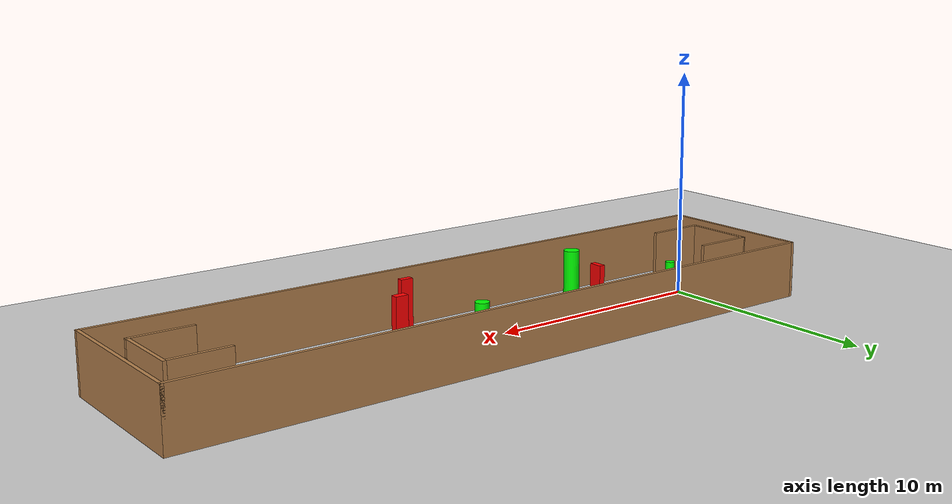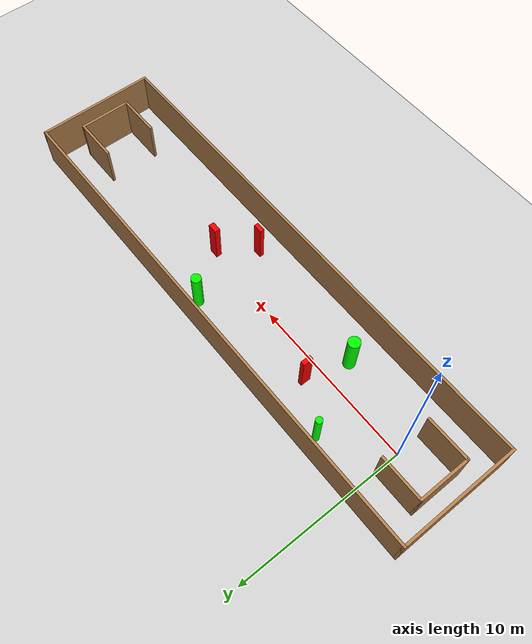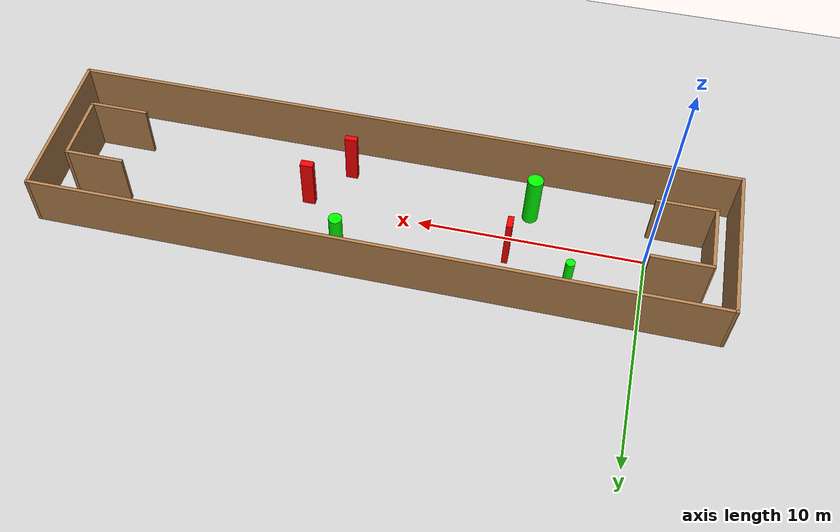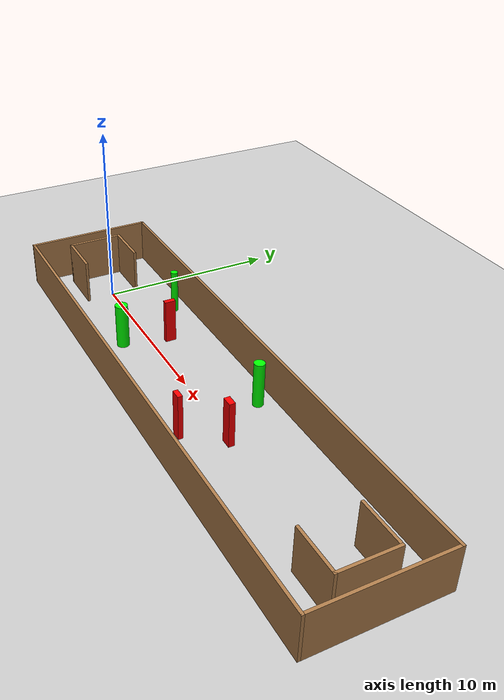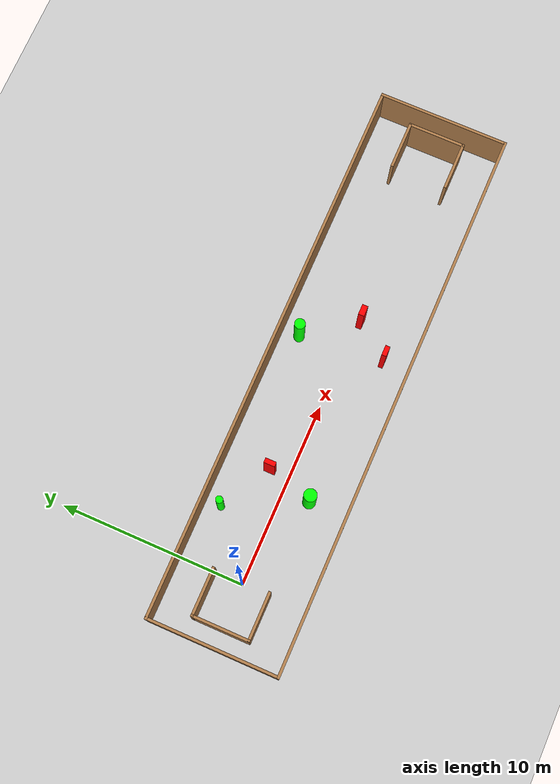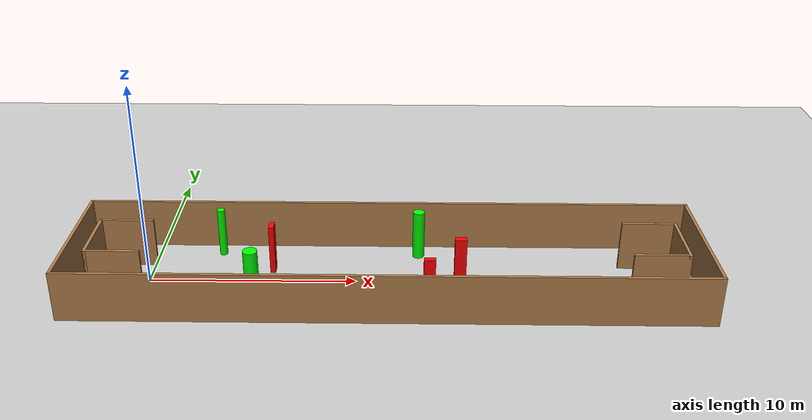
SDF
<sdf version="1.7">
 <world name="default">
  <light name="sun" type="directional">
   <pose>0 0 10 0 -0 0</pose>
   <diffuse>0.8 0.8 0.8 1</diffuse>
   <specular>0.2 0.2 0.2 1</specular>
   <attenuation>
    <range>1000</range>
    <constant>0.9</constant>
    <linear>0.01</linear>
    <quadratic>0.001</quadratic>
   </attenuation>
   <direction>-0.5 0.1 -0.9</direction>
   <spot><inner_angle>0</inner_angle><outer_angle>0</outer_angle><falloff>0</falloff></spot>
  </light>
  <model name="ground_plane">
   <static>1</static>
   <link name="link">
    <collision name="collision">
     <geometry><plane><normal>0 0 1</normal><size>100 100</size></plane></geometry>
     <surface>
      <contact><collide_bitmask>65535</collide_bitmask></contact>
      <friction><ode><mu>100</mu><mu2>50</mu2></ode></friction>
     </surface>
    </collision>
    <visual name="visual">
     <cast_shadows>0</cast_shadows>
     <geometry><plane><normal>0 0 1</normal><size>100 100</size></plane></geometry>
     <material>
      <script><uri>file://media/materials/scripts/gazebo.material</uri><name>Gazebo/Grey</name></script>
     </material>
    </visual>
   </link>
  </model>
  <gravity>0 0 -9.8</gravity>
  <magnetic_field>6e-06 2.3e-05 -4.2e-05</magnetic_field>
  <atmosphere type="adiabatic"/>
  <physics type="ode">
   <max_step_size>0.001</max_step_size>
   <real_time_factor>1</real_time_factor>
   <real_time_update_rate>1000</real_time_update_rate>
  </physics>
  <scene><ambient>0.4 0.4 0.4 1</ambient><background>0.7 0.7 0.7 1</background><shadows>1</shadows></scene>
  <spherical_coordinates>
   <surface_model>EARTH_WGS84</surface_model>
   <latitude_deg>0</latitude_deg>
   <longitude_deg>0</longitude_deg>
   <elevation>0</elevation>
   <heading_deg>0</heading_deg>
  </spherical_coordinates>
  <model name="my_base_walls">
   <link name="Wall_0">
    <collision name="Wall_0_Collision">
     <geometry><box><size>7.15 0.15 2.5</size></box></geometry>
     <pose>0 0 1.25 0 -0 0</pose>
    </collision>
    <visual name="Wall_0_Visual">
     <pose>0 0 1.25 0 -0 0</pose>
     <geometry><box><size>7.15 0.15 2.5</size></box></geometry>
     <material>
      <script><uri>file://media/materials/scripts/gazebo.material</uri><name>Gazebo/Wood</name></script>
      <ambient>1 1 1 1</ambient>
     </material>
     <meta><layer>0</layer></meta>
    </visual>
    <pose>-15 0 0 0 -0 1.5708</pose>
   </link>
   <link name="Wall_10">
    <collision name="Wall_10_Collision">
     <geometry><box><size>2.65 0.15 2.5</size></box></geometry>
     <pose>0 0 1.25 0 -0 0</pose>
    </collision>
    <visual name="Wall_10_Visual">
     <pose>0 0 1.25 0 -0 0</pose>
     <geometry><box><size>2.65 0.15 2.5</size></box></geometry>
     <material>
      <script><uri>file://media/materials/scripts/gazebo.material</uri><name>Gazebo/Wood</name></script>
      <ambient>1 1 1 1</ambient>
     </material>
     <meta><layer>0</layer></meta>
    </visual>
    <pose>-12.75 -1.5 0 0 -0 0</pose>
   </link>
   <link name="Wall_12">
    <collision name="Wall_12_Collision">
     <geometry><box><size>2.65 0.15 2.5</size></box></geometry>
     <pose>0 0 1.25 0 -0 0</pose>
    </collision>
    <visual name="Wall_12_Visual">
     <pose>0 0 1.25 0 -0 0</pose>
     <geometry><box><size>2.65 0.15 2.5</size></box></geometry>
     <material>
      <script><uri>file://media/materials/scripts/gazebo.material</uri><name>Gazebo/Wood</name></script>
      <ambient>1 1 1 1</ambient>
     </material>
     <meta><layer>0</layer></meta>
    </visual>
    <pose>-12.75 1.5 0 0 -0 0</pose>
   </link>
   <link name="Wall_14">
    <collision name="Wall_14_Collision">
     <geometry><box><size>3.15 0.15 2.5</size></box></geometry>
     <pose>0 0 1.25 0 -0 0</pose>
    </collision>
    <visual name="Wall_14_Visual">
     <pose>0 0 1.25 0 -0 0</pose>
     <geometry><box><size>3.15 0.15 2.5</size></box></geometry>
     <material>
      <script><uri>file://media/materials/scripts/gazebo.material</uri><name>Gazebo/Wood</name></script>
      <ambient>1 1 1 1</ambient>
     </material>
     <meta><layer>0</layer></meta>
    </visual>
    <pose>14 0 0 0 -0 -1.5708</pose>
   </link>
   <link name="Wall_15">
    <collision name="Wall_15_Collision">
     <geometry><box><size>2.65 0.15 2.5</size></box></geometry>
     <pose>0 0 1.25 0 -0 0</pose>
    </collision>
    <visual name="Wall_15_Visual">
     <pose>0 0 1.25 0 -0 0</pose>
     <geometry><box><size>2.65 0.15 2.5</size></box></geometry>
     <material>
      <script><uri>file://media/materials/scripts/gazebo.material</uri><name>Gazebo/Wood</name></script>
      <ambient>1 1 1 1</ambient>
     </material>
     <meta><layer>0</layer></meta>
    </visual>
    <pose>12.75 -1.5 0 0 -0 3.14159</pose>
   </link>
   <link name="Wall_17">
    <collision name="Wall_17_Collision">
     <geometry><box><size>2.65 0.15 2.5</size></box></geometry>
     <pose>0 0 1.25 0 -0 0</pose>
    </collision>
    <visual name="Wall_17_Visual">
     <pose>0 0 1.25 0 -0 0</pose>
     <geometry><box><size>2.65 0.15 2.5</size></box></geometry>
     <material>
      <script><uri>file://media/materials/scripts/gazebo.material</uri><name>Gazebo/Wood</name></script>
      <ambient>1 1 1 1</ambient>
     </material>
     <meta><layer>0</layer></meta>
    </visual>
    <pose>12.75 1.5 0 0 -0 3.14159</pose>
   </link>
   <link name="Wall_2">
    <collision name="Wall_2_Collision">
     <geometry><box><size>30.15 0.15 2.5</size></box></geometry>
     <pose>0 0 1.25 0 -0 0</pose>
    </collision>
    <visual name="Wall_2_Visual">
     <pose>0 0 1.25 0 -0 0</pose>
     <geometry><box><size>30.15 0.15 2.5</size></box></geometry>
     <material>
      <script><uri>file://media/materials/scripts/gazebo.material</uri><name>Gazebo/Wood</name></script>
      <ambient>1 1 1 1</ambient>
     </material>
     <meta><layer>0</layer></meta>
    </visual>
    <pose>-0 -3.5 0 0 -0 0</pose>
   </link>
   <link name="Wall_4">
    <collision name="Wall_4_Collision">
     <geometry><box><size>30.15 0.15 2.5</size></box></geometry>
     <pose>0 0 1.25 0 -0 0</pose>
    </collision>
    <visual name="Wall_4_Visual">
     <pose>0 0 1.25 0 -0 0</pose>
     <geometry><box><size>30.15 0.15 2.5</size></box></geometry>
     <material>
      <script><uri>file://media/materials/scripts/gazebo.material</uri><name>Gazebo/Wood</name></script>
      <ambient>1 1 1 1</ambient>
     </material>
     <meta><layer>0</layer></meta>
    </visual>
    <pose>-0 3.5 0 0 -0 0</pose>
   </link>
   <link name="Wall_6">
    <collision name="Wall_6_Collision">
     <geometry><box><size>7.15 0.15 2.5</size></box></geometry>
     <pose>0 0 1.25 0 -0 0</pose>
    </collision>
    <visual name="Wall_6_Visual">
     <pose>0 0 1.25 0 -0 0</pose>
     <geometry><box><size>7.15 0.15 2.5</size></box></geometry>
     <material>
      <script><uri>file://media/materials/scripts/gazebo.material</uri><name>Gazebo/Wood</name></script>
      <ambient>1 1 1 1</ambient>
     </material>
     <meta><layer>0</layer></meta>
    </visual>
    <pose>15 0 0 0 -0 -1.5708</pose>
   </link>
   <link name="Wall_9">
    <collision name="Wall_9_Collision">
     <geometry><box><size>3.15 0.15 2.5</size></box></geometry>
     <pose>0 0 1.25 0 -0 0</pose>
    </collision>
    <visual name="Wall_9_Visual">
     <pose>0 0 1.25 0 -0 0</pose>
     <geometry><box><size>3.15 0.15 2.5</size></box></geometry>
     <material>
      <script><uri>file://media/materials/scripts/gazebo.material</uri><name>Gazebo/Wood</name></script>
      <ambient>1 1 1 1</ambient>
     </material>
     <meta><layer>0</layer></meta>
    </visual>
    <pose>-14 0 0 0 -0 -1.5708</pose>
   </link>
   <static>1</static>
   <pose>11.5 0 0 0 -0 0</pose>
  </model>
  <model name="cylinder1">
   <static>1</static>
   <link name="link">
    <inertial>
     <mass>1</mass>
     <inertia><ixx>0.5</ixx><ixy>0</ixy><ixz>0</ixz><iyy>0.5</iyy><iyz>0</iyz><izz>1</izz></inertia>
    </inertial>
    <collision name="collision">
     <geometry><cylinder><radius>0.19423619277158433</radius><length>2.5</length></cylinder></geometry>
    </collision>
    <visual name="visual">
     <geometry><cylinder><radius>0.19423619277158433</radius><length>2.5</length></cylinder></geometry>
     <material>
      <ambient>0 1 0 1</ambient>
      <diffuse>0 1 0 1</diffuse>
      <specular>0.1 0.1 0.1 1</specular>
      <emissive>0 0 0 0</emissive>
     </material>
    </visual>
   </link>
   <pose>3.189150881828942 2.6073340648031476 1.25 0 0 0</pose>
  </model>
  <model name="cylinder2">
   <static>1</static>
   <link name="link">
    <inertial>
     <mass>1</mass>
     <inertia><ixx>0.5</ixx><ixy>0</ixy><ixz>0</ixz><iyy>0.5</iyy><iyz>0</iyz><izz>1</izz></inertia>
    </inertial>
    <collision name="collision">
     <geometry><cylinder><radius>0.34514103279318836</radius><length>2.5</length></cylinder></geometry>
    </collision>
    <visual name="visual">
     <geometry><cylinder><radius>0.34514103279318836</radius><length>2.5</length></cylinder></geometry>
     <material>
      <ambient>0 1 0 1</ambient>
      <diffuse>0 1 0 1</diffuse>
      <specular>0.1 0.1 0.1 1</specular>
      <emissive>0 0 0 0</emissive>
     </material>
    </visual>
   </link>
   <pose>5.191149334968005 -1.439240977616341 1.25 0 0 0</pose>
  </model>
  <model name="cylinder3">
   <static>1</static>
   <link name="link">
    <inertial>
     <mass>1</mass>
     <inertia><ixx>0.5</ixx><ixy>0</ixy><ixz>0</ixz><iyy>0.5</iyy><iyz>0</iyz><izz>1</izz></inertia>
    </inertial>
    <collision name="collision">
     <geometry><cylinder><radius>0.28776869308232844</radius><length>2.5</length></cylinder></geometry>
    </collision>
    <visual name="visual">
     <geometry><cylinder><radius>0.28776869308232844</radius><length>2.5</length></cylinder></geometry>
     <material>
      <ambient>0 1 0 1</ambient>
      <diffuse>0 1 0 1</diffuse>
      <specular>0.1 0.1 0.1 1</specular>
      <emissive>0 0 0 0</emissive>
     </material>
    </visual>
   </link>
   <pose>13.071747947082832 2.5213918507560473 1.25 0 0 0</pose>
  </model>
  <model name="box1">
   <static>1</static>
   <link name="link">
    <inertial>
     <mass>1</mass>
     <inertia><ixx>0.083</ixx><ixy>0</ixy><ixz>0</ixz><iyy>0.083</iyy><iyz>0</iyz><izz>0.083</izz></inertia>
    </inertial>
    <collision name="collision">
     <geometry><box><size>0.5455423285205685 0.25543365674737184 2.5</size></box></geometry>
    </collision>
    <visual name="visual">
     <geometry><box><size>0.5455423285205685 0.25543365674737184 2.5</size></box></geometry>
     <material>
      <ambient>1 0 0 1</ambient>
      <diffuse>1 0 0 1</diffuse>
      <specular>0.1 0.1 0.1 1</specular>
      <emissive>0 0 0 0</emissive>
     </material>
    </visual>
    <sensor name="my_contact" type="contact">
     <contact><collision>box_collision</collision><topic>__default_topic__</topic></contact>
    </sensor>
   </link>
   <pose>13.51212560559494 -2.0452034282246814 1.25 0 0 0</pose>
  </model>
  <model name="box2">
   <static>1</static>
   <link name="link">
    <inertial>
     <mass>1</mass>
     <inertia><ixx>0.083</ixx><ixy>0</ixy><ixz>0</ixz><iyy>0.083</iyy><iyz>0</iyz><izz>0.083</izz></inertia>
    </inertial>
    <collision name="collision">
     <geometry><box><size>0.5678380143343476 0.32089831310140715 2.5</size></box></geometry>
    </collision>
    <visual name="visual">
     <geometry><box><size>0.5678380143343476 0.32089831310140715 2.5</size></box></geometry>
     <material>
      <ambient>1 0 0 1</ambient>
      <diffuse>1 0 0 1</diffuse>
      <specular>0.1 0.1 0.1 1</specular>
      <emissive>0 0 0 0</emissive>
     </material>
    </visual>
    <sensor name="my_contact" type="contact">
     <contact><collision>box_collision</collision><topic>__default_topic__</topic></contact>
    </sensor>
   </link>
   <pose>15.032265864182259 -0.16259519591833405 1.25 0 0 0</pose>
  </model>
  <model name="box3">
   <static>1</static>
   <link name="link">
    <inertial>
     <mass>1</mass>
     <inertia><ixx>0.083</ixx><ixy>0</ixy><ixz>0</ixz><iyy>0.083</iyy><iyz>0</iyz><izz>0.083</izz></inertia>
    </inertial>
    <collision name="collision">
     <geometry><box><size>0.2583190078798225 0.5921261477139514 2.5</size></box></geometry>
    </collision>
    <visual name="visual">
     <geometry><box><size>0.2583190078798225 0.5921261477139514 2.5</size></box></geometry>
     <material>
      <ambient>1 0 0 1</ambient>
      <diffuse>1 0 0 1</diffuse>
      <specular>0.1 0.1 0.1 1</specular>
      <emissive>0 0 0 0</emissive>
     </material>
    </visual>
    <sensor name="my_contact" type="contact">
     <contact><collision>box_collision</collision><topic>__default_topic__</topic></contact>
    </sensor>
   </link>
   <pose>5.9042100156821355 1.050872130554585 1.25 0 0 0</pose>
  </model>
 </world>
</sdf>
